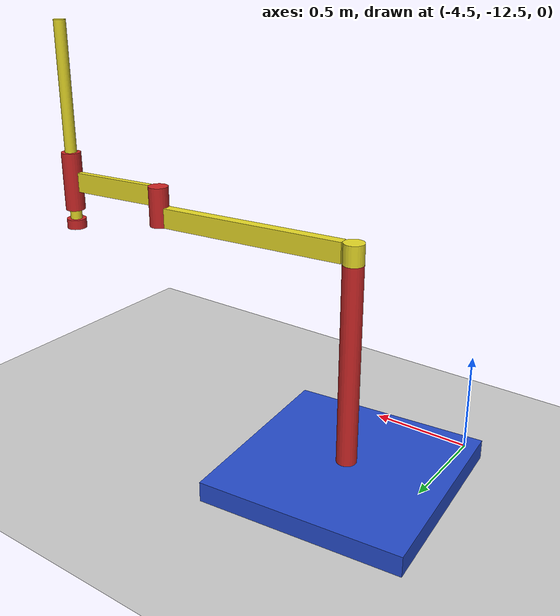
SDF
<sdf version="1.7">
 <world name="default">
  <model name="ground_plane">
   <static>1</static>
   <link name="link">
    <collision name="collision">
     <geometry><plane><normal>0 0 1</normal><size>25 25</size></plane></geometry>
     <surface><friction><ode><mu>100</mu><mu2>50</mu2></ode></friction></surface>
    </collision>
    <visual name="visual">
     <cast_shadows>0</cast_shadows>
     <geometry><plane><normal>0 0 1</normal><size>25 25</size></plane></geometry>
     <material>
      <script><uri>file://media/materials/scripts/gazebo.material</uri><name>Gazebo/Grey</name></script>
     </material>
    </visual>
   </link>
  </model>
  <model name="simple_arm_clone_0">
   <link name="arm_base">
    <inertial>
     <pose>0 0 0.00099 0 -0 0</pose>
     <inertia><ixx>1.11</ixx><ixy>0</ixy><ixz>0</ixz><iyy>100.11</iyy><iyz>0</iyz><izz>1.01</izz></inertia>
     <mass>101</mass>
    </inertial>
    <collision name="arm_base_geom">
     <pose>0 0 0.05 0 -0 0</pose>
     <geometry><box><size>1 1 0.1</size></box></geometry>
    </collision>
    <visual name="arm_base_geom_visual">
     <pose>0 0 0.05 0 -0 0</pose>
     <geometry><box><size>1 1 0.1</size></box></geometry>
     <material>
      <script><uri>file://media/materials/scripts/gazebo.material</uri><name>Gazebo/Blue</name></script>
     </material>
    </visual>
    <collision name="arm_base_geom_arm_trunk">
     <pose>0 0 0.6 0 -0 0</pose>
     <geometry><cylinder><radius>0.05</radius><length>1</length></cylinder></geometry>
    </collision>
    <visual name="arm_base_geom_arm_trunk_visual">
     <pose>0 0 0.6 0 -0 0</pose>
     <geometry><cylinder><radius>0.05</radius><length>1</length></cylinder></geometry>
     <material>
      <script><uri>file://media/materials/scripts/gazebo.material</uri><name>Gazebo/Red</name></script>
     </material>
    </visual>
   </link>
   <link name="arm_shoulder_pan">
    <pose>0 0 1.1 0 -0 0</pose>
    <inertial>
     <pose>0.045455 0 0 0 -0 0</pose>
     <inertia><ixx>0.011</ixx><ixy>0</ixy><ixz>0</ixz><iyy>0.0225</iyy><iyz>0</iyz><izz>0.0135</izz></inertia>
     <mass>1.1</mass>
    </inertial>
    <collision name="arm_shoulder_pan_geom">
     <pose>0 0 0.05 0 -0 0</pose>
     <geometry><cylinder><radius>0.05</radius><length>0.1</length></cylinder></geometry>
    </collision>
    <visual name="arm_shoulder_pan_geom_visual">
     <pose>0 0 0.05 0 -0 0</pose>
     <geometry><cylinder><radius>0.05</radius><length>0.1</length></cylinder></geometry>
     <material>
      <script><uri>file://media/materials/scripts/gazebo.material</uri><name>Gazebo/Yellow</name></script>
     </material>
    </visual>
    <collision name="arm_shoulder_pan_geom_arm_shoulder">
     <pose>0.55 0 0.05 0 -0 0</pose>
     <geometry><box><size>1 0.05 0.1</size></box></geometry>
    </collision>
    <visual name="arm_shoulder_pan_geom_arm_shoulder_visual">
     <pose>0.55 0 0.05 0 -0 0</pose>
     <geometry><box><size>1 0.05 0.1</size></box></geometry>
     <material>
      <script><uri>file://media/materials/scripts/gazebo.material</uri><name>Gazebo/Yellow</name></script>
     </material>
    </visual>
   </link>
   <link name="arm_elbow_pan">
    <pose>1.05 0 1.1 0 -0 0</pose>
    <inertial>
     <pose>0.0875 0 0.083333 0 -0 0</pose>
     <inertia>
      <ixx>0.031</ixx>
      <ixy>0</ixy>
      <ixz>0.005</ixz>
      <iyy>0.07275</iyy>
      <iyz>0</iyz>
      <izz>0.04475</izz>
     </inertia>
     <mass>1.2</mass>
    </inertial>
    <collision name="arm_elbow_pan_geom">
     <pose>0 0 0.1 0 -0 0</pose>
     <geometry><cylinder><radius>0.05</radius><length>0.2</length></cylinder></geometry>
    </collision>
    <visual name="arm_elbow_pan_geom_visual">
     <pose>0 0 0.1 0 -0 0</pose>
     <geometry><cylinder><radius>0.05</radius><length>0.2</length></cylinder></geometry>
     <material>
      <script><uri>file://media/materials/scripts/gazebo.material</uri><name>Gazebo/Red</name></script>
     </material>
    </visual>
    <collision name="arm_elbow_pan_geom_arm_elbow">
     <pose>0.3 0 0.15 0 -0 0</pose>
     <geometry><box><size>0.5 0.03 0.1</size></box></geometry>
    </collision>
    <visual name="arm_elbow_pan_geom_arm_elbow_visual">
     <pose>0.3 0 0.15 0 -0 0</pose>
     <geometry><box><size>0.5 0.03 0.1</size></box></geometry>
     <material>
      <script><uri>file://media/materials/scripts/gazebo.material</uri><name>Gazebo/Yellow</name></script>
     </material>
    </visual>
    <collision name="arm_elbow_pan_geom_arm_wrist">
     <pose>0.55 0 0.15 0 -0 0</pose>
     <geometry><cylinder><radius>0.05</radius><length>0.3</length></cylinder></geometry>
    </collision>
    <visual name="arm_elbow_pan_geom_arm_wrist_visual">
     <pose>0.55 0 0.15 0 -0 0</pose>
     <geometry><cylinder><radius>0.05</radius><length>0.3</length></cylinder></geometry>
     <material>
      <script><uri>file://media/materials/scripts/gazebo.material</uri><name>Gazebo/Red</name></script>
     </material>
    </visual>
   </link>
   <link name="arm_wrist_lift">
    <pose>1.6 0 1.05 0 -0 0</pose>
    <inertial>
     <inertia><ixx>0.01</ixx><ixy>0</ixy><ixz>0</ixz><iyy>0.01</iyy><iyz>0</iyz><izz>0.001</izz></inertia>
     <mass>0.1</mass>
    </inertial>
    <collision name="arm_wrist_lift_geom">
     <pose>0 0 0.5 0 -0 0</pose>
     <geometry><cylinder><radius>0.03</radius><length>1</length></cylinder></geometry>
    </collision>
    <visual name="arm_wrist_lift_geom_visual">
     <pose>0 0 0.5 0 -0 0</pose>
     <geometry><cylinder><radius>0.03</radius><length>1</length></cylinder></geometry>
     <material>
      <script><uri>file://media/materials/scripts/gazebo.material</uri><name>Gazebo/Yellow</name></script>
     </material>
    </visual>
   </link>
   <link name="arm_wrist_roll">
    <pose>1.6 0 1 0 -0 0</pose>
    <inertial>
     <inertia><ixx>0.01</ixx><ixy>0</ixy><ixz>0</ixz><iyy>0.01</iyy><iyz>0</iyz><izz>0.001</izz></inertia>
     <mass>0.1</mass>
    </inertial>
    <collision name="arm_wrist_roll_geom">
     <pose>0 0 0.025 0 -0 0</pose>
     <geometry><cylinder><radius>0.05</radius><length>0.05</length></cylinder></geometry>
    </collision>
    <visual name="arm_wrist_roll_geom_visual">
     <pose>0 0 0.025 0 -0 0</pose>
     <geometry><cylinder><radius>0.05</radius><length>0.05</length></cylinder></geometry>
     <material>
      <script><uri>file://media/materials/scripts/gazebo.material</uri><name>Gazebo/Red</name></script>
     </material>
    </visual>
   </link>
   <joint name="arm_shoulder_pan_joint" type="revolute">
    <parent>arm_base</parent>
    <child>arm_shoulder_pan</child>
    <axis>
     <dynamics>
      <damping>1</damping>
      <friction>0</friction>
      <spring_reference>0</spring_reference>
      <spring_stiffness>0</spring_stiffness>
     </dynamics>
     <xyz expressed_in="__model__">0 0 1</xyz>
     <limit><lower>-1e+16</lower><upper>1e+16</upper></limit>
    </axis>
   </joint>
   <joint name="arm_elbow_pan_joint" type="revolute">
    <parent>arm_shoulder_pan</parent>
    <child>arm_elbow_pan</child>
    <axis>
     <dynamics>
      <damping>1</damping>
      <friction>0</friction>
      <spring_reference>0</spring_reference>
      <spring_stiffness>0</spring_stiffness>
     </dynamics>
     <xyz expressed_in="__model__">0 0 1</xyz>
     <limit><lower>-1e+16</lower><upper>1e+16</upper></limit>
    </axis>
   </joint>
   <joint name="arm_wrist_lift_joint" type="prismatic">
    <parent>arm_elbow_pan</parent>
    <child>arm_wrist_lift</child>
    <axis>
     <dynamics>
      <damping>1</damping>
      <friction>0</friction>
      <spring_reference>0</spring_reference>
      <spring_stiffness>0</spring_stiffness>
     </dynamics>
     <limit><lower>-0.8</lower><upper>0.1</upper></limit>
     <xyz expressed_in="__model__">0 0 1</xyz>
    </axis>
   </joint>
   <joint name="arm_wrist_roll_joint" type="revolute">
    <parent>arm_wrist_lift</parent>
    <child>arm_wrist_roll</child>
    <axis>
     <dynamics>
      <damping>1</damping>
      <friction>0</friction>
      <spring_reference>0</spring_reference>
      <spring_stiffness>0</spring_stiffness>
     </dynamics>
     <limit><lower>-2.99999</lower><upper>2.99999</upper></limit>
     <xyz expressed_in="__model__">0 0 1</xyz>
    </axis>
   </joint>
   <pose>-4.16048 -11.8984 -5.6e-05 0.000114 2e-06 0.095311</pose>
  </model>
 </world>
</sdf>
